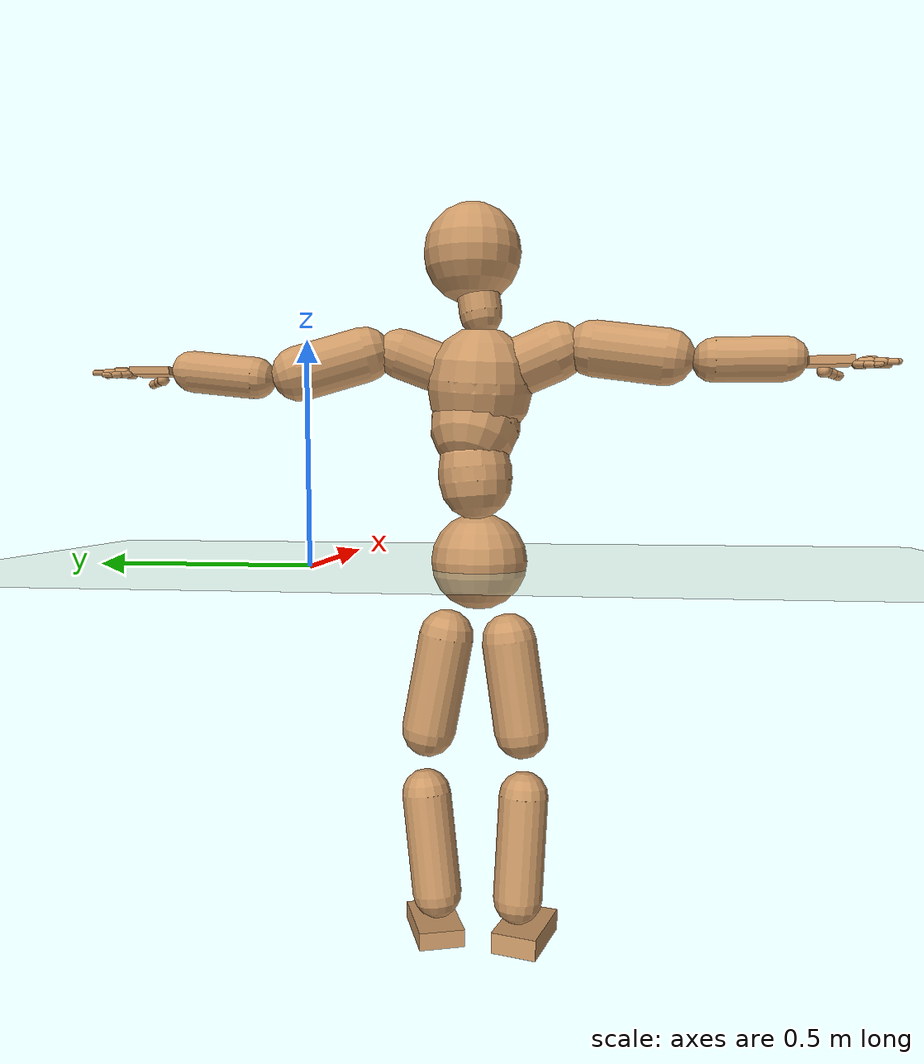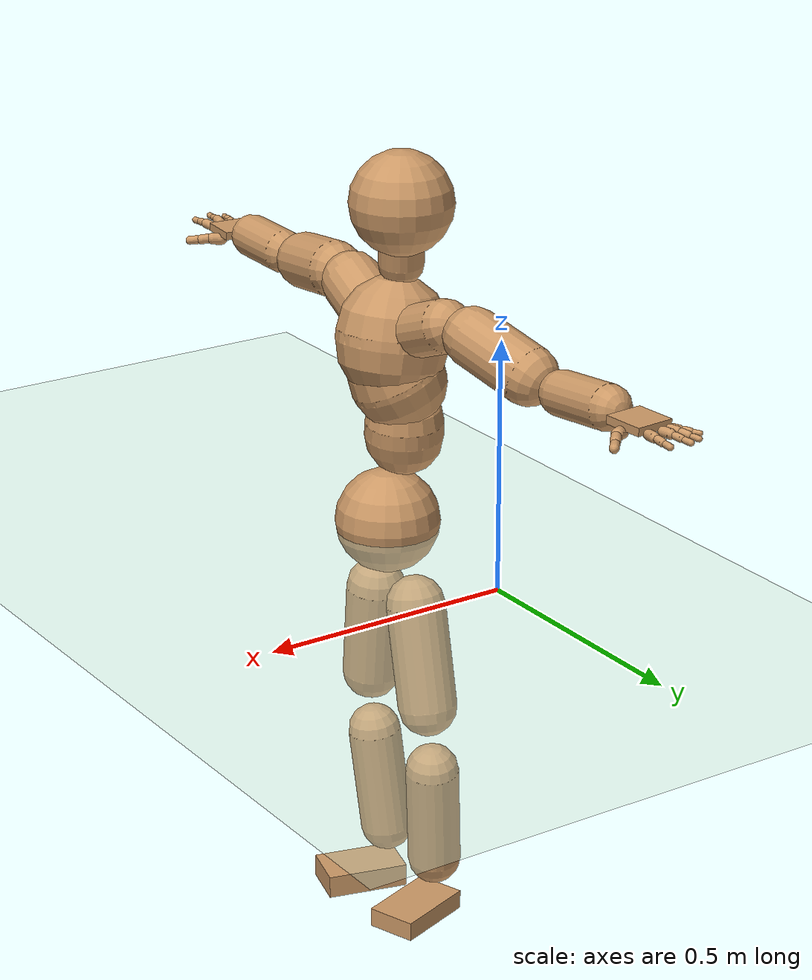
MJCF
<mujoco model="humanoid">
  <compiler coordinate="local" angle="radian"/>
  <default>
    <joint damping="0.0" armature="0.01" stiffness="0.0" limited="true"/>
    <geom conaffinity="1" condim="3" contype="7" margin="0.001" rgba="0.8 0.6 .4 1"/>
  </default>
  <asset>
    <texture type="skybox" builtin="gradient" rgb1=".4 .5 .6" rgb2="0 0 0" width="100" height="100"/>
    <texture builtin="flat" height="1278" mark="cross" markrgb="1 1 1" name="texgeom" random="0.01" rgb1="0.8 0.6 0.4" rgb2="0.8 0.6 0.4" type="cube" width="127"/>
    <texture builtin="checker" height="100" name="texplane" rgb1="0 0 0" rgb2="0.8 0.8 0.8" type="2d" width="100"/>
    <material name="MatPlane" reflectance="0.5" shininess="1" specular="1" texrepeat="60 60" texture="texplane"/>
    <material name="geom" texture="texgeom" texuniform="true"/>
  </asset>
  <worldbody>
    <light cutoff="100" diffuse="1 1 1" dir="-0 0 -1.3" directional="true" exponent="1" pos="0 0 1.3" specular=".1 .1 .1"/>
    <geom conaffinity="1" condim="3" name="floor" pos="0 0 0" rgba="0.8 0.9 0.8 1" size="100 100 .2" type="plane" material="MatPlane"/>
    <body name="Pelvis" pos="0.0013 -0.3829 0.0157">
      <freejoint name="Pelvis"/>
      <geom type="sphere" contype="1" conaffinity="1" density="500" size="0.1065" pos="0.0000 0.0000 0.0000" name="Pelvis"/>
      <body name="L_Hip" pos="-0.0199 0.057 -0.0952">
        <joint name="L_Hip_x" type="hinge" pos="0 0 0" axis="1 0 0" stiffness="800" damping="80" armature="0.02" range="-180.0000 180.0000"/>
        <joint name="L_Hip_y" type="hinge" pos="0 0 0" axis="0 1 0" stiffness="800" damping="80" armature="0.02" range="-180.0000 180.0000"/>
        <joint name="L_Hip_z" type="hinge" pos="0 0 0" axis="0 0 1" stiffness="800" damping="80" armature="0.02" range="-180.0000 180.0000"/>
        <geom type="capsule" contype="1" conaffinity="1" density="500" fromto="-0.0008 0.0131 -0.0709 -0.0032 0.0524 -0.2836" size="0.0603" name="L_Hip"/>
        <body name="L_Knee" pos="-0.004 0.0655 -0.3545">
          <joint name="L_Knee_x" type="hinge" pos="0 0 0" axis="1 0 0" stiffness="800" damping="80" armature="0.02" range="-180.0000 180.0000"/>
          <joint name="L_Knee_y" type="hinge" pos="0 0 0" axis="0 1 0" stiffness="800" damping="80" armature="0.02" range="-180.0000 180.0000"/>
          <joint name="L_Knee_z" type="hinge" pos="0 0 0" axis="0 0 1" stiffness="800" damping="80" armature="0.02" range="-180.0000 180.0000"/>
          <geom type="capsule" contype="1" conaffinity="1" density="500" fromto="-0.0080 -0.0090 -0.0740 -0.0320 -0.0361 -0.2962" size="0.0548" name="L_Knee"/>
          <body name="L_Ankle" pos="-0.04 -0.0451 -0.3702">
            <joint name="L_Ankle_x" type="hinge" pos="0 0 0" axis="1 0 0" stiffness="800" damping="80" armature="0.02" range="-180.0000 180.0000"/>
            <joint name="L_Ankle_y" type="hinge" pos="0 0 0" axis="0 1 0" stiffness="800" damping="80" armature="0.02" range="-180.0000 180.0000"/>
            <joint name="L_Ankle_z" type="hinge" pos="0 0 0" axis="0 0 1" stiffness="800" damping="80" armature="0.02" range="-180.0000 180.0000"/>
            <geom type="box" contype="1" conaffinity="1" density="500" pos="0.0626 0.0218 -0.0264" size="0.0857 0.0518 0.02" quat="0.9860 0.0000 0.0000 0.1667" name="L_Ankle"/>
            <body name="L_Toe" pos="0.1252 0.0436 -0.0529">
              <joint name="L_Toe_x" type="hinge" pos="0 0 0" axis="1 0 0" stiffness="500" damping="50" armature="0.02" range="-180.0000 180.0000"/>
              <joint name="L_Toe_y" type="hinge" pos="0 0 0" axis="0 1 0" stiffness="500" damping="50" armature="0.02" range="-180.0000 180.0000"/>
              <joint name="L_Toe_z" type="hinge" pos="0 0 0" axis="0 0 1" stiffness="500" damping="50" armature="0.02" range="-180.0000 180.0000"/>
              <geom type="box" contype="1" conaffinity="1" density="500" pos="0.0000 0.0000 0.0278" size="0.001 0.0025 0.0011" quat="0.9852 0.0000 0.0000 0.1712" name="L_Toe"/>
            </body>
          </body>
        </body>
      </body>
      <body name="R_Hip" pos="-0.0125 -0.0588 -0.1063">
        <joint name="R_Hip_x" type="hinge" pos="0 0 0" axis="1 0 0" stiffness="800" damping="80" armature="0.02" range="-180.0000 180.0000"/>
        <joint name="R_Hip_y" type="hinge" pos="0 0 0" axis="0 1 0" stiffness="800" damping="80" armature="0.02" range="-180.0000 180.0000"/>
        <joint name="R_Hip_z" type="hinge" pos="0 0 0" axis="0 0 1" stiffness="800" damping="80" armature="0.02" range="-180.0000 180.0000"/>
        <geom type="capsule" contype="1" conaffinity="1" density="500" fromto="-0.0024 -0.0099 -0.0677 -0.0097 -0.0396 -0.2707" size="0.0603" name="R_Hip"/>
        <body name="R_Knee" pos="-0.0121 -0.0495 -0.3384">
          <joint name="R_Knee_x" type="hinge" pos="0 0 0" axis="1 0 0" stiffness="800" damping="80" armature="0.02" range="-180.0000 180.0000"/>
          <joint name="R_Knee_y" type="hinge" pos="0 0 0" axis="0 1 0" stiffness="800" damping="80" armature="0.02" range="-180.0000 180.0000"/>
          <joint name="R_Knee_z" type="hinge" pos="0 0 0" axis="0 0 1" stiffness="800" damping="80" armature="0.02" range="-180.0000 180.0000"/>
          <geom type="capsule" contype="1" conaffinity="1" density="500" fromto="-0.0078 0.0033 -0.0763 -0.0314 0.0132 -0.3054" size="0.0548" name="R_Knee"/>
          <body name="R_Ankle" pos="-0.0392 0.0165 -0.3817">
            <joint name="R_Ankle_x" type="hinge" pos="0 0 0" axis="1 0 0" stiffness="800" damping="80" armature="0.02" range="-180.0000 180.0000"/>
            <joint name="R_Ankle_y" type="hinge" pos="0 0 0" axis="0 1 0" stiffness="800" damping="80" armature="0.02" range="-180.0000 180.0000"/>
            <joint name="R_Ankle_z" type="hinge" pos="0 0 0" axis="0 0 1" stiffness="800" damping="80" armature="0.02" range="-180.0000 180.0000"/>
            <geom type="box" contype="1" conaffinity="1" density="500" pos="0.0658 -0.0173 -0.0261" size="0.0857 0.0518 0.0241" quat="0.9918 0.0000 0.0000 -0.1282" name="R_Ankle"/>
            <body name="R_Toe" pos="0.1316 -0.0346 -0.0522">
              <joint name="R_Toe_x" type="hinge" pos="0 0 0" axis="1 0 0" stiffness="500" damping="50" armature="0.02" range="-180.0000 180.0000"/>
              <joint name="R_Toe_y" type="hinge" pos="0 0 0" axis="0 1 0" stiffness="500" damping="50" armature="0.02" range="-180.0000 180.0000"/>
              <joint name="R_Toe_z" type="hinge" pos="0 0 0" axis="0 0 1" stiffness="500" damping="50" armature="0.02" range="-180.0000 180.0000"/>
              <geom type="box" contype="1" conaffinity="1" density="500" pos="0.0000 0.0000 0.0234" size="0.001 0.0025 0.0011" quat="0.9929 0.0000 0.0000 -0.1193" name="R_Toe"/>
            </body>
          </body>
        </body>
      </body>
      <body name="Torso" pos="-0.0395 -0.001 0.1102">
        <joint name="Torso_x" type="hinge" pos="0 0 0" axis="1 0 0" stiffness="1000" damping="100" armature="0.02" range="-180.0000 180.0000"/>
        <joint name="Torso_y" type="hinge" pos="0 0 0" axis="0 1 0" stiffness="1000" damping="100" armature="0.02" range="-180.0000 180.0000"/>
        <joint name="Torso_z" type="hinge" pos="0 0 0" axis="0 0 1" stiffness="1000" damping="100" armature="0.02" range="-180.0000 180.0000"/>
        <geom type="capsule" contype="1" conaffinity="1" density="500" fromto="0.0036 0.0077 0.0944 0.0024 0.0051 0.0629" size="0.0793" name="Torso"/>
        <body name="Spine" pos="0.0059 0.0128 0.1573">
          <joint name="Spine_x" type="hinge" pos="0 0 0" axis="1 0 0" stiffness="1000" damping="100" armature="0.02" range="-180.0000 180.0000"/>
          <joint name="Spine_y" type="hinge" pos="0 0 0" axis="0 1 0" stiffness="1000" damping="100" armature="0.02" range="-180.0000 180.0000"/>
          <joint name="Spine_z" type="hinge" pos="0 0 0" axis="0 0 1" stiffness="1000" damping="100" armature="0.02" range="-180.0000 180.0000"/>
          <geom type="capsule" contype="1" conaffinity="1" density="500" fromto="0.0158 -0.0064 0.0355 0.0105 -0.0042 0.0236" size="0.0965" name="Spine"/>
          <body name="Chest" pos="0.0264 -0.0106 0.0591">
            <joint name="Chest_x" type="hinge" pos="0 0 0" axis="1 0 0" stiffness="1000" damping="100" armature="0.02" range="-180.0000 180.0000"/>
            <joint name="Chest_y" type="hinge" pos="0 0 0" axis="0 1 0" stiffness="1000" damping="100" armature="0.02" range="-180.0000 180.0000"/>
            <joint name="Chest_z" type="hinge" pos="0 0 0" axis="0 0 1" stiffness="1000" damping="100" armature="0.02" range="-180.0000 180.0000"/>
            <geom type="capsule" contype="1" conaffinity="1" density="500" fromto="-0.0093 -0.0038 0.0642 -0.0062 -0.0025 0.0428" size="0.1133" name="Chest"/>
            <body name="Neck" pos="-0.0331 -0.012 0.1674">
              <joint name="Neck_x" type="hinge" pos="0 0 0" axis="1 0 0" stiffness="500" damping="50" armature="0.02" range="-180.0000 180.0000"/>
              <joint name="Neck_y" type="hinge" pos="0 0 0" axis="0 1 0" stiffness="500" damping="50" armature="0.02" range="-180.0000 180.0000"/>
              <joint name="Neck_z" type="hinge" pos="0 0 0" axis="0 0 1" stiffness="500" damping="50" armature="0.02" range="-180.0000 180.0000"/>
              <geom type="capsule" contype="1" conaffinity="1" density="500" fromto="0.0028 0.0049 0.0319 0.0114 0.0197 0.1274" size="0.0453" name="Neck"/>
              <body name="Head" pos="0.0142 0.0247 0.1593">
                <joint name="Head_x" type="hinge" pos="0 0 0" axis="1 0 0" stiffness="500" damping="50" armature="0.02" range="-180.0000 180.0000"/>
                <joint name="Head_y" type="hinge" pos="0 0 0" axis="0 1 0" stiffness="500" damping="50" armature="0.02" range="-180.0000 180.0000"/>
                <joint name="Head_z" type="hinge" pos="0 0 0" axis="0 0 1" stiffness="500" damping="50" armature="0.02" range="-180.0000 180.0000"/>
                <geom type="sphere" contype="1" conaffinity="1" density="500" size="0.1036" pos="0.0000 0.0000 0.0000" name="Head"/>
              </body>
            </body>
            <body name="L_Thorax" pos="-0.0056 0.0455 0.0764">
              <joint name="L_Thorax_x" type="hinge" pos="0 0 0" axis="1 0 0" stiffness="500" damping="50" armature="0.02" range="-180.0000 180.0000"/>
              <joint name="L_Thorax_y" type="hinge" pos="0 0 0" axis="0 1 0" stiffness="500" damping="50" armature="0.02" range="-180.0000 180.0000"/>
              <joint name="L_Thorax_z" type="hinge" pos="0 0 0" axis="0 0 1" stiffness="500" damping="50" armature="0.02" range="-180.0000 180.0000"/>
              <geom type="capsule" contype="1" conaffinity="1" density="500" fromto="-0.0021 0.0307 0.0116 -0.0084 0.1227 0.0464" size="0.0529" name="L_Thorax"/>
              <body name="L_Shoulder" pos="-0.0105 0.1534 0.058">
                <joint name="L_Shoulder_x" type="hinge" pos="0 0 0" axis="1 0 0" stiffness="500" damping="50" armature="0.02" range="-180.0000 180.0000"/>
                <joint name="L_Shoulder_y" type="hinge" pos="0 0 0" axis="0 1 0" stiffness="500" damping="50" armature="0.02" range="-180.0000 180.0000"/>
                <joint name="L_Shoulder_z" type="hinge" pos="0 0 0" axis="0 0 1" stiffness="500" damping="50" armature="0.02" range="-180.0000 180.0000"/>
                <geom type="capsule" contype="1" conaffinity="1" density="500" fromto="-0.0098 0.0461 -0.0139 -0.0394 0.1845 -0.0556" size="0.0587" name="L_Shoulder"/>
                <body name="L_Elbow" pos="-0.0492 0.2306 -0.0695">
                  <joint name="L_Elbow_x" type="hinge" pos="0 0 0" axis="1 0 0" stiffness="500" damping="50" armature="0.02" range="-720.0000 720.0000"/>
                  <joint name="L_Elbow_y" type="hinge" pos="0 0 0" axis="0 1 0" stiffness="500" damping="50" armature="0.02" range="-720.0000 720.0000"/>
                  <joint name="L_Elbow_z" type="hinge" pos="0 0 0" axis="0 0 1" stiffness="500" damping="50" armature="0.02" range="-720.0000 720.0000"/>
                  <geom type="capsule" contype="1" conaffinity="1" density="500" fromto="0.0006 0.0470 0.0052 0.0023 0.1881 0.0208" size="0.0443" name="L_Elbow"/>
                  <body name="L_Wrist" pos="0.0029 0.2352 0.026">
                    <joint name="L_Wrist_x" type="hinge" pos="0 0 0" axis="1 0 0" stiffness="300" damping="30" armature="0.02" range="-180.0000 180.0000"/>
                    <joint name="L_Wrist_y" type="hinge" pos="0 0 0" axis="0 1 0" stiffness="300" damping="30" armature="0.02" range="-180.0000 180.0000"/>
                    <joint name="L_Wrist_z" type="hinge" pos="0 0 0" axis="0 0 1" stiffness="300" damping="30" armature="0.02" range="-180.0000 180.0000"/>
                    <geom type="box" contype="1" conaffinity="1" density="500" pos="-0.0029 0.0389 -0.0050" size="0.0426 0.0395 0.0082" quat="0.7326 0.0000 0.0000 -0.6807" name="L_Wrist"/>
                    <body name="L_Index1" pos="0.0214 0.0923 -0.0068">
                      <joint name="L_Index1_x" type="hinge" pos="0 0 0" axis="1 0 0" stiffness="100" damping="10" armature="0.02" range="-180.0000 180.0000"/>
                      <joint name="L_Index1_y" type="hinge" pos="0 0 0" axis="0 1 0" stiffness="100" damping="10" armature="0.02" range="-180.0000 180.0000"/>
                      <joint name="L_Index1_z" type="hinge" pos="0 0 0" axis="0 0 1" stiffness="100" damping="10" armature="0.02" range="-180.0000 180.0000"/>
                      <geom type="capsule" contype="1" conaffinity="1" density="500" fromto="0.0007 0.0062 0.0004 0.0029 0.0249 0.0014" size="0.0099" name="L_Index1"/>
                      <body name="L_Index2" pos="0.0037 0.0312 0.0018">
                        <joint name="L_Index2_x" type="hinge" pos="0 0 0" axis="1 0 0" stiffness="100" damping="10" armature="0.02" range="-180.0000 180.0000"/>
                        <joint name="L_Index2_y" type="hinge" pos="0 0 0" axis="0 1 0" stiffness="100" damping="10" armature="0.02" range="-180.0000 180.0000"/>
                        <joint name="L_Index2_z" type="hinge" pos="0 0 0" axis="0 0 1" stiffness="100" damping="10" armature="0.02" range="-180.0000 180.0000"/>
                        <geom type="capsule" contype="1" conaffinity="1" density="500" fromto="-0.0001 0.0044 -0.0005 -0.0003 0.0176 -0.0021" size="0.0079" name="L_Index2"/>
                        <body name="L_Index3" pos="-0.0003 0.0219 -0.0026">
                          <joint name="L_Index3_x" type="hinge" pos="0 0 0" axis="1 0 0" stiffness="100" damping="10" armature="0.02" range="-180.0000 180.0000"/>
                          <joint name="L_Index3_y" type="hinge" pos="0 0 0" axis="0 1 0" stiffness="100" damping="10" armature="0.02" range="-180.0000 180.0000"/>
                          <joint name="L_Index3_z" type="hinge" pos="0 0 0" axis="0 0 1" stiffness="100" damping="10" armature="0.02" range="-180.0000 180.0000"/>
                          <geom type="capsule" contype="1" conaffinity="1" density="500" fromto="0.0003 0.0048 -0.0001 0.0013 0.0192 -0.0005" size="0.0066" name="L_Index3"/>
                        </body>
                      </body>
                    </body>
                    <body name="L_Middle1" pos="-0.0035 0.0996 -0.004">
                      <joint name="L_Middle1_x" type="hinge" pos="0 0 0" axis="1 0 0" stiffness="100" damping="10" armature="0.02" range="-180.0000 180.0000"/>
                      <joint name="L_Middle1_y" type="hinge" pos="0 0 0" axis="0 1 0" stiffness="100" damping="10" armature="0.02" range="-180.0000 180.0000"/>
                      <joint name="L_Middle1_z" type="hinge" pos="0 0 0" axis="0 0 1" stiffness="100" damping="10" armature="0.02" range="-180.0000 180.0000"/>
                      <geom type="capsule" contype="1" conaffinity="1" density="500" fromto="-0.0009 0.0060 0.0001 -0.0034 0.0238 0.0005" size="0.0099" name="L_Middle1"/>
                      <body name="L_Middle2" pos="-0.0043 0.0298 0.0006">
                        <joint name="L_Middle2_x" type="hinge" pos="0 0 0" axis="1 0 0" stiffness="100" damping="10" armature="0.02" range="-180.0000 180.0000"/>
                        <joint name="L_Middle2_y" type="hinge" pos="0 0 0" axis="0 1 0" stiffness="100" damping="10" armature="0.02" range="-180.0000 180.0000"/>
                        <joint name="L_Middle2_z" type="hinge" pos="0 0 0" axis="0 0 1" stiffness="100" damping="10" armature="0.02" range="-180.0000 180.0000"/>
                        <geom type="capsule" contype="1" conaffinity="1" density="500" fromto="-0.0008 0.0045 -0.0005 -0.0034 0.0181 -0.0019" size="0.0072" name="L_Middle2"/>
                        <body name="L_Middle3" pos="-0.0042 0.0226 -0.0024">
                          <joint name="L_Middle3_x" type="hinge" pos="0 0 0" axis="1 0 0" stiffness="100" damping="10" armature="0.02" range="-180.0000 180.0000"/>
                          <joint name="L_Middle3_y" type="hinge" pos="0 0 0" axis="0 1 0" stiffness="100" damping="10" armature="0.02" range="-180.0000 180.0000"/>
                          <joint name="L_Middle3_z" type="hinge" pos="0 0 0" axis="0 0 1" stiffness="100" damping="10" armature="0.02" range="-180.0000 180.0000"/>
                          <geom type="capsule" contype="1" conaffinity="1" density="500" fromto="-0.0004 0.0049 -0.0001 -0.0018 0.0197 -0.0003" size="0.0062" name="L_Middle3"/>
                        </body>
                      </body>
                    </body>
                    <body name="L_Pinky1" pos="-0.0458 0.0754 -0.0133">
                      <joint name="L_Pinky1_x" type="hinge" pos="0 0 0" axis="1 0 0" stiffness="100" damping="10" armature="0.02" range="-180.0000 180.0000"/>
                      <joint name="L_Pinky1_y" type="hinge" pos="0 0 0" axis="0 1 0" stiffness="100" damping="10" armature="0.02" range="-180.0000 180.0000"/>
                      <joint name="L_Pinky1_z" type="hinge" pos="0 0 0" axis="0 0 1" stiffness="100" damping="10" armature="0.02" range="-180.0000 180.0000"/>
                      <geom type="capsule" contype="1" conaffinity="1" density="500" fromto="-0.0024 0.0032 -0.0003 -0.0095 0.0129 -0.0013" size="0.007" name="L_Pinky1"/>
                      <body name="L_Pinky2" pos="-0.0118 0.0161 -0.0016">
                        <joint name="L_Pinky2_x" type="hinge" pos="0 0 0" axis="1 0 0" stiffness="100" damping="10" armature="0.02" range="-180.0000 180.0000"/>
                        <joint name="L_Pinky2_y" type="hinge" pos="0 0 0" axis="0 1 0" stiffness="100" damping="10" armature="0.02" range="-180.0000 180.0000"/>
                        <joint name="L_Pinky2_z" type="hinge" pos="0 0 0" axis="0 0 1" stiffness="100" damping="10" armature="0.02" range="-180.0000 180.0000"/>
                        <geom type="capsule" contype="1" conaffinity="1" density="500" fromto="-0.0021 0.0032 -0.0004 -0.0086 0.0127 -0.0016" size="0.0066" name="L_Pinky2"/>
                        <body name="L_Pinky3" pos="-0.0107 0.0159 -0.002">
                          <joint name="L_Pinky3_x" type="hinge" pos="0 0 0" axis="1 0 0" stiffness="100" damping="10" armature="0.02" range="-180.0000 180.0000"/>
                          <joint name="L_Pinky3_y" type="hinge" pos="0 0 0" axis="0 1 0" stiffness="100" damping="10" armature="0.02" range="-180.0000 180.0000"/>
                          <joint name="L_Pinky3_z" type="hinge" pos="0 0 0" axis="0 0 1" stiffness="100" damping="10" armature="0.02" range="-180.0000 180.0000"/>
                          <geom type="capsule" contype="1" conaffinity="1" density="500" fromto="-0.0017 0.0036 0.0000 -0.0070 0.0143 0.0000" size="0.0049" name="L_Pinky3"/>
                        </body>
                      </body>
                    </body>
                    <body name="L_Ring1" pos="-0.0284 0.0881 -0.0072">
                      <joint name="L_Ring1_x" type="hinge" pos="0 0 0" axis="1 0 0" stiffness="100" damping="10" armature="0.02" range="-180.0000 180.0000"/>
                      <joint name="L_Ring1_y" type="hinge" pos="0 0 0" axis="0 1 0" stiffness="100" damping="10" armature="0.02" range="-180.0000 180.0000"/>
                      <joint name="L_Ring1_z" type="hinge" pos="0 0 0" axis="0 0 1" stiffness="100" damping="10" armature="0.02" range="-180.0000 180.0000"/>
                      <geom type="capsule" contype="1" conaffinity="1" density="500" fromto="-0.0010 0.0055 0.0001 -0.0039 0.0221 0.0005" size="0.0084" name="L_Ring1"/>
                      <body name="L_Ring2" pos="-0.0048 0.0277 0.0006">
                        <joint name="L_Ring2_x" type="hinge" pos="0 0 0" axis="1 0 0" stiffness="100" damping="10" armature="0.02" range="-180.0000 180.0000"/>
                        <joint name="L_Ring2_y" type="hinge" pos="0 0 0" axis="0 1 0" stiffness="100" damping="10" armature="0.02" range="-180.0000 180.0000"/>
                        <joint name="L_Ring2_z" type="hinge" pos="0 0 0" axis="0 0 1" stiffness="100" damping="10" armature="0.02" range="-180.0000 180.0000"/>
                        <geom type="capsule" contype="1" conaffinity="1" density="500" fromto="-0.0013 0.0045 -0.0005 -0.0051 0.0180 -0.0020" size="0.0077" name="L_Ring2"/>
                        <body name="L_Ring3" pos="-0.0064 0.0225 -0.0025">
                          <joint name="L_Ring3_x" type="hinge" pos="0 0 0" axis="1 0 0" stiffness="100" damping="10" armature="0.02" range="-180.0000 180.0000"/>
                          <joint name="L_Ring3_y" type="hinge" pos="0 0 0" axis="0 1 0" stiffness="100" damping="10" armature="0.02" range="-180.0000 180.0000"/>
                          <joint name="L_Ring3_z" type="hinge" pos="0 0 0" axis="0 0 1" stiffness="100" damping="10" armature="0.02" range="-180.0000 180.0000"/>
                          <geom type="capsule" contype="1" conaffinity="1" density="500" fromto="-0.0009 0.0049 -0.0001 -0.0035 0.0196 -0.0004" size="0.0058" name="L_Ring3"/>
                        </body>
                      </body>
                    </body>
                    <body name="L_Thumb1" pos="0.0278 0.0336 -0.0191">
                      <joint name="L_Thumb1_x" type="hinge" pos="0 0 0" axis="1 0 0" stiffness="100" damping="10" armature="0.02" range="-180.0000 180.0000"/>
                      <joint name="L_Thumb1_y" type="hinge" pos="0 0 0" axis="0 1 0" stiffness="100" damping="10" armature="0.02" range="-180.0000 180.0000"/>
                      <joint name="L_Thumb1_z" type="hinge" pos="0 0 0" axis="0 0 1" stiffness="100" damping="10" armature="0.02" range="-180.0000 180.0000"/>
                      <geom type="capsule" contype="1" conaffinity="1" density="500" fromto="0.0053 0.0030 0.0005 0.0213 0.0119 0.0018" size="0.0126" name="L_Thumb1"/>
                      <body name="L_Thumb2" pos="0.0266 0.0149 0.0023">
                        <joint name="L_Thumb2_x" type="hinge" pos="0 0 0" axis="1 0 0" stiffness="100" damping="10" armature="0.02" range="-180.0000 180.0000"/>
                        <joint name="L_Thumb2_y" type="hinge" pos="0 0 0" axis="0 1 0" stiffness="100" damping="10" armature="0.02" range="-180.0000 180.0000"/>
                        <joint name="L_Thumb2_z" type="hinge" pos="0 0 0" axis="0 0 1" stiffness="100" damping="10" armature="0.02" range="-180.0000 180.0000"/>
                        <geom type="capsule" contype="1" conaffinity="1" density="500" fromto="0.0033 0.0037 -0.0010 0.0131 0.0149 -0.0038" size="0.0101" name="L_Thumb2"/>
                        <body name="L_Thumb3" pos="0.0164 0.0187 -0.0048">
                          <joint name="L_Thumb3_x" type="hinge" pos="0 0 0" axis="1 0 0" stiffness="100" damping="10" armature="0.02" range="-180.0000 180.0000"/>
                          <joint name="L_Thumb3_y" type="hinge" pos="0 0 0" axis="0 1 0" stiffness="100" damping="10" armature="0.02" range="-180.0000 180.0000"/>
                          <joint name="L_Thumb3_z" type="hinge" pos="0 0 0" axis="0 0 1" stiffness="100" damping="10" armature="0.02" range="-180.0000 180.0000"/>
                          <geom type="capsule" contype="1" conaffinity="1" density="500" fromto="0.0037 0.0041 -0.0006 0.0147 0.0165 -0.0022" size="0.0091" name="L_Thumb3"/>
                        </body>
                      </body>
                    </body>
                  </body>
                </body>
              </body>
            </body>
            <body name="R_Thorax" pos="-0.0079 -0.0524 0.0771">
              <joint name="R_Thorax_x" type="hinge" pos="0 0 0" axis="1 0 0" stiffness="500" damping="50" armature="0.02" range="-180.0000 180.0000"/>
              <joint name="R_Thorax_y" type="hinge" pos="0 0 0" axis="0 1 0" stiffness="500" damping="50" armature="0.02" range="-180.0000 180.0000"/>
              <joint name="R_Thorax_z" type="hinge" pos="0 0 0" axis="0 0 1" stiffness="500" damping="50" armature="0.02" range="-180.0000 180.0000"/>
              <geom type="capsule" contype="1" conaffinity="1" density="500" fromto="-0.0026 -0.0281 0.0113 -0.0105 -0.1125 0.0450" size="0.0623" name="R_Thorax"/>
              <body name="R_Shoulder" pos="-0.0131 -0.1406 0.0563">
                <joint name="R_Shoulder_x" type="hinge" pos="0 0 0" axis="1 0 0" stiffness="500" damping="50" armature="0.02" range="-180.0000 180.0000"/>
                <joint name="R_Shoulder_y" type="hinge" pos="0 0 0" axis="0 1 0" stiffness="500" damping="50" armature="0.02" range="-180.0000 180.0000"/>
                <joint name="R_Shoulder_z" type="hinge" pos="0 0 0" axis="0 0 1" stiffness="500" damping="50" armature="0.02" range="-180.0000 180.0000"/>
                <geom type="capsule" contype="1" conaffinity="1" density="500" fromto="-0.0062 -0.0497 -0.0075 -0.0250 -0.1986 -0.0299" size="0.0581" name="R_Shoulder"/>
                <body name="R_Elbow" pos="-0.0312 -0.2483 -0.0374">
                  <joint name="R_Elbow_x" type="hinge" pos="0 0 0" axis="1 0 0" stiffness="500" damping="50" armature="0.02" range="-720.0000 720.0000"/>
                  <joint name="R_Elbow_y" type="hinge" pos="0 0 0" axis="0 1 0" stiffness="500" damping="50" armature="0.02" range="-720.0000 720.0000"/>
                  <joint name="R_Elbow_z" type="hinge" pos="0 0 0" axis="0 0 1" stiffness="500" damping="50" armature="0.02" range="-720.0000 720.0000"/>
                  <geom type="capsule" contype="1" conaffinity="1" density="500" fromto="-0.0018 -0.0458 -0.0003 -0.0074 -0.1833 -0.0010" size="0.0453" name="R_Elbow"/>
                  <body name="R_Wrist" pos="-0.0092 -0.2291 -0.0013">
                    <joint name="R_Wrist_x" type="hinge" pos="0 0 0" axis="1 0 0" stiffness="300" damping="30" armature="0.02" range="-180.0000 180.0000"/>
                    <joint name="R_Wrist_y" type="hinge" pos="0 0 0" axis="0 1 0" stiffness="300" damping="30" armature="0.02" range="-180.0000 180.0000"/>
                    <joint name="R_Wrist_z" type="hinge" pos="0 0 0" axis="0 0 1" stiffness="300" damping="30" armature="0.02" range="-180.0000 180.0000"/>
                    <geom type="box" contype="1" conaffinity="1" density="500" pos="-0.0033 -0.0387 -0.0069" size="0.0426 0.0402 0.0084" quat="0.7368 0.0000 0.0000 0.6762" name="R_Wrist"/>
                    <body name="R_Index1" pos="0.0205 -0.0919 -0.0106">
                      <joint name="R_Index1_x" type="hinge" pos="0 0 0" axis="1 0 0" stiffness="100" damping="10" armature="0.02" range="-180.0000 180.0000"/>
                      <joint name="R_Index1_y" type="hinge" pos="0 0 0" axis="0 1 0" stiffness="100" damping="10" armature="0.02" range="-180.0000 180.0000"/>
                      <joint name="R_Index1_z" type="hinge" pos="0 0 0" axis="0 0 1" stiffness="100" damping="10" armature="0.02" range="-180.0000 180.0000"/>
                      <geom type="capsule" contype="1" conaffinity="1" density="500" fromto="0.0007 -0.0062 0.0004 0.0029 -0.0249 0.0014" size="0.0099" name="R_Index1"/>
                      <body name="R_Index2" pos="0.0037 -0.0312 0.0018">
                        <joint name="R_Index2_x" type="hinge" pos="0 0 0" axis="1 0 0" stiffness="100" damping="10" armature="0.02" range="-180.0000 180.0000"/>
                        <joint name="R_Index2_y" type="hinge" pos="0 0 0" axis="0 1 0" stiffness="100" damping="10" armature="0.02" range="-180.0000 180.0000"/>
                        <joint name="R_Index2_z" type="hinge" pos="0 0 0" axis="0 0 1" stiffness="100" damping="10" armature="0.02" range="-180.0000 180.0000"/>
                        <geom type="capsule" contype="1" conaffinity="1" density="500" fromto="-0.0001 -0.0044 -0.0005 -0.0003 -0.0176 -0.0021" size="0.0079" name="R_Index2"/>
                        <body name="R_Index3" pos="-0.0003 -0.0219 -0.0026">
                          <joint name="R_Index3_x" type="hinge" pos="0 0 0" axis="1 0 0" stiffness="100" damping="10" armature="0.02" range="-180.0000 180.0000"/>
                          <joint name="R_Index3_y" type="hinge" pos="0 0 0" axis="0 1 0" stiffness="100" damping="10" armature="0.02" range="-180.0000 180.0000"/>
                          <joint name="R_Index3_z" type="hinge" pos="0 0 0" axis="0 0 1" stiffness="100" damping="10" armature="0.02" range="-180.0000 180.0000"/>
                          <geom type="capsule" contype="1" conaffinity="1" density="500" fromto="0.0003 -0.0040 -0.0001 0.0013 -0.0160 -0.0005" size="0.0069" name="R_Index3"/>
                        </body>
                      </body>
                    </body>
                    <body name="R_Middle1" pos="-0.0045 -0.0992 -0.0078">
                      <joint name="R_Middle1_x" type="hinge" pos="0 0 0" axis="1 0 0" stiffness="100" damping="10" armature="0.02" range="-180.0000 180.0000"/>
                      <joint name="R_Middle1_y" type="hinge" pos="0 0 0" axis="0 1 0" stiffness="100" damping="10" armature="0.02" range="-180.0000 180.0000"/>
                      <joint name="R_Middle1_z" type="hinge" pos="0 0 0" axis="0 0 1" stiffness="100" damping="10" armature="0.02" range="-180.0000 180.0000"/>
                      <geom type="capsule" contype="1" conaffinity="1" density="500" fromto="-0.0009 -0.0060 0.0001 -0.0034 -0.0238 0.0005" size="0.0099" name="R_Middle1"/>
                      <body name="R_Middle2" pos="-0.0043 -0.0298 0.0006">
                        <joint name="R_Middle2_x" type="hinge" pos="0 0 0" axis="1 0 0" stiffness="100" damping="10" armature="0.02" range="-180.0000 180.0000"/>
                        <joint name="R_Middle2_y" type="hinge" pos="0 0 0" axis="0 1 0" stiffness="100" damping="10" armature="0.02" range="-180.0000 180.0000"/>
                        <joint name="R_Middle2_z" type="hinge" pos="0 0 0" axis="0 0 1" stiffness="100" damping="10" armature="0.02" range="-180.0000 180.0000"/>
                        <geom type="capsule" contype="1" conaffinity="1" density="500" fromto="-0.0008 -0.0045 -0.0005 -0.0034 -0.0181 -0.0019" size="0.0072" name="R_Middle2"/>
                        <body name="R_Middle3" pos="-0.0042 -0.0226 -0.0024">
                          <joint name="R_Middle3_x" type="hinge" pos="0 0 0" axis="1 0 0" stiffness="100" damping="10" armature="0.02" range="-180.0000 180.0000"/>
                          <joint name="R_Middle3_y" type="hinge" pos="0 0 0" axis="0 1 0" stiffness="100" damping="10" armature="0.02" range="-180.0000 180.0000"/>
                          <joint name="R_Middle3_z" type="hinge" pos="0 0 0" axis="0 0 1" stiffness="100" damping="10" armature="0.02" range="-180.0000 180.0000"/>
                          <geom type="capsule" contype="1" conaffinity="1" density="500" fromto="-0.0004 -0.0041 -0.0001 -0.0018 -0.0165 -0.0003" size="0.0065" name="R_Middle3"/>
                        </body>
                      </body>
                    </body>
                    <body name="R_Pinky1" pos="-0.0467 -0.0749 -0.0171">
                      <joint name="R_Pinky1_x" type="hinge" pos="0 0 0" axis="1 0 0" stiffness="100" damping="10" armature="0.02" range="-180.0000 180.0000"/>
                      <joint name="R_Pinky1_y" type="hinge" pos="0 0 0" axis="0 1 0" stiffness="100" damping="10" armature="0.02" range="-180.0000 180.0000"/>
                      <joint name="R_Pinky1_z" type="hinge" pos="0 0 0" axis="0 0 1" stiffness="100" damping="10" armature="0.02" range="-180.0000 180.0000"/>
                      <geom type="capsule" contype="1" conaffinity="1" density="500" fromto="-0.0024 -0.0032 -0.0003 -0.0095 -0.0129 -0.0013" size="0.007" name="R_Pinky1"/>
                      <body name="R_Pinky2" pos="-0.0118 -0.0161 -0.0016">
                        <joint name="R_Pinky2_x" type="hinge" pos="0 0 0" axis="1 0 0" stiffness="100" damping="10" armature="0.02" range="-180.0000 180.0000"/>
                        <joint name="R_Pinky2_y" type="hinge" pos="0 0 0" axis="0 1 0" stiffness="100" damping="10" armature="0.02" range="-180.0000 180.0000"/>
                        <joint name="R_Pinky2_z" type="hinge" pos="0 0 0" axis="0 0 1" stiffness="100" damping="10" armature="0.02" range="-180.0000 180.0000"/>
                        <geom type="capsule" contype="1" conaffinity="1" density="500" fromto="-0.0021 -0.0032 -0.0004 -0.0086 -0.0127 -0.0016" size="0.0066" name="R_Pinky2"/>
                        <body name="R_Pinky3" pos="-0.0107 -0.0159 -0.002">
                          <joint name="R_Pinky3_x" type="hinge" pos="0 0 0" axis="1 0 0" stiffness="100" damping="10" armature="0.02" range="-180.0000 180.0000"/>
                          <joint name="R_Pinky3_y" type="hinge" pos="0 0 0" axis="0 1 0" stiffness="100" damping="10" armature="0.02" range="-180.0000 180.0000"/>
                          <joint name="R_Pinky3_z" type="hinge" pos="0 0 0" axis="0 0 1" stiffness="100" damping="10" armature="0.02" range="-180.0000 180.0000"/>
                          <geom type="capsule" contype="1" conaffinity="1" density="500" fromto="-0.0017 -0.0028 0.0000 -0.0070 -0.0111 0.0000" size="0.0051" name="R_Pinky3"/>
                        </body>
                      </body>
                    </body>
                    <body name="R_Ring1" pos="-0.0294 -0.0876 -0.011">
                      <joint name="R_Ring1_x" type="hinge" pos="0 0 0" axis="1 0 0" stiffness="100" damping="10" armature="0.02" range="-180.0000 180.0000"/>
                      <joint name="R_Ring1_y" type="hinge" pos="0 0 0" axis="0 1 0" stiffness="100" damping="10" armature="0.02" range="-180.0000 180.0000"/>
                      <joint name="R_Ring1_z" type="hinge" pos="0 0 0" axis="0 0 1" stiffness="100" damping="10" armature="0.02" range="-180.0000 180.0000"/>
                      <geom type="capsule" contype="1" conaffinity="1" density="500" fromto="-0.0010 -0.0055 0.0001 -0.0039 -0.0221 0.0005" size="0.0084" name="R_Ring1"/>
                      <body name="R_Ring2" pos="-0.0048 -0.0277 0.0006">
                        <joint name="R_Ring2_x" type="hinge" pos="0 0 0" axis="1 0 0" stiffness="100" damping="10" armature="0.02" range="-180.0000 180.0000"/>
                        <joint name="R_Ring2_y" type="hinge" pos="0 0 0" axis="0 1 0" stiffness="100" damping="10" armature="0.02" range="-180.0000 180.0000"/>
                        <joint name="R_Ring2_z" type="hinge" pos="0 0 0" axis="0 0 1" stiffness="100" damping="10" armature="0.02" range="-180.0000 180.0000"/>
                        <geom type="capsule" contype="1" conaffinity="1" density="500" fromto="-0.0013 -0.0045 -0.0005 -0.0051 -0.0180 -0.0020" size="0.0077" name="R_Ring2"/>
                        <body name="R_Ring3" pos="-0.0064 -0.0225 -0.0025">
                          <joint name="R_Ring3_x" type="hinge" pos="0 0 0" axis="1 0 0" stiffness="100" damping="10" armature="0.02" range="-180.0000 180.0000"/>
                          <joint name="R_Ring3_y" type="hinge" pos="0 0 0" axis="0 1 0" stiffness="100" damping="10" armature="0.02" range="-180.0000 180.0000"/>
                          <joint name="R_Ring3_z" type="hinge" pos="0 0 0" axis="0 0 1" stiffness="100" damping="10" armature="0.02" range="-180.0000 180.0000"/>
                          <geom type="capsule" contype="1" conaffinity="1" density="500" fromto="-0.0009 -0.0041 -0.0001 -0.0035 -0.0164 -0.0004" size="0.0061" name="R_Ring3"/>
                        </body>
                      </body>
                    </body>
                    <body name="R_Thumb1" pos="0.0268 -0.0332 -0.0229">
                      <joint name="R_Thumb1_x" type="hinge" pos="0 0 0" axis="1 0 0" stiffness="100" damping="10" armature="0.02" range="-180.0000 180.0000"/>
                      <joint name="R_Thumb1_y" type="hinge" pos="0 0 0" axis="0 1 0" stiffness="100" damping="10" armature="0.02" range="-180.0000 180.0000"/>
                      <joint name="R_Thumb1_z" type="hinge" pos="0 0 0" axis="0 0 1" stiffness="100" damping="10" armature="0.02" range="-180.0000 180.0000"/>
                      <geom type="capsule" contype="1" conaffinity="1" density="500" fromto="0.0053 -0.0030 0.0005 0.0213 -0.0119 0.0018" size="0.0126" name="R_Thumb1"/>
                      <body name="R_Thumb2" pos="0.0266 -0.0149 0.0023">
                        <joint name="R_Thumb2_x" type="hinge" pos="0 0 0" axis="1 0 0" stiffness="100" damping="10" armature="0.02" range="-180.0000 180.0000"/>
                        <joint name="R_Thumb2_y" type="hinge" pos="0 0 0" axis="0 1 0" stiffness="100" damping="10" armature="0.02" range="-180.0000 180.0000"/>
                        <joint name="R_Thumb2_z" type="hinge" pos="0 0 0" axis="0 0 1" stiffness="100" damping="10" armature="0.02" range="-180.0000 180.0000"/>
                        <geom type="capsule" contype="1" conaffinity="1" density="500" fromto="0.0033 -0.0037 -0.0010 0.0131 -0.0149 -0.0038" size="0.0101" name="R_Thumb2"/>
                        <body name="R_Thumb3" pos="0.0164 -0.0187 -0.0048">
                          <joint name="R_Thumb3_x" type="hinge" pos="0 0 0" axis="1 0 0" stiffness="100" damping="10" armature="0.02" range="-180.0000 180.0000"/>
                          <joint name="R_Thumb3_y" type="hinge" pos="0 0 0" axis="0 1 0" stiffness="100" damping="10" armature="0.02" range="-180.0000 180.0000"/>
                          <joint name="R_Thumb3_z" type="hinge" pos="0 0 0" axis="0 0 1" stiffness="100" damping="10" armature="0.02" range="-180.0000 180.0000"/>
                          <geom type="capsule" contype="1" conaffinity="1" density="500" fromto="0.0037 -0.0033 -0.0006 0.0147 -0.0133 -0.0022" size="0.0093" name="R_Thumb3"/>
                        </body>
                      </body>
                    </body>
                  </body>
                </body>
              </body>
            </body>
          </body>
        </body>
      </body>
    </body>
  </worldbody>
  <actuator>
    <motor name="L_Hip_x" joint="L_Hip_x" gear="500"/>
    <motor name="L_Hip_y" joint="L_Hip_y" gear="500"/>
    <motor name="L_Hip_z" joint="L_Hip_z" gear="500"/>
    <motor name="L_Knee_x" joint="L_Knee_x" gear="500"/>
    <motor name="L_Knee_y" joint="L_Knee_y" gear="500"/>
    <motor name="L_Knee_z" joint="L_Knee_z" gear="500"/>
    <motor name="L_Ankle_x" joint="L_Ankle_x" gear="500"/>
    <motor name="L_Ankle_y" joint="L_Ankle_y" gear="500"/>
    <motor name="L_Ankle_z" joint="L_Ankle_z" gear="500"/>
    <motor name="L_Toe_x" joint="L_Toe_x" gear="500"/>
    <motor name="L_Toe_y" joint="L_Toe_y" gear="500"/>
    <motor name="L_Toe_z" joint="L_Toe_z" gear="500"/>
    <motor name="R_Hip_x" joint="R_Hip_x" gear="500"/>
    <motor name="R_Hip_y" joint="R_Hip_y" gear="500"/>
    <motor name="R_Hip_z" joint="R_Hip_z" gear="500"/>
    <motor name="R_Knee_x" joint="R_Knee_x" gear="500"/>
    <motor name="R_Knee_y" joint="R_Knee_y" gear="500"/>
    <motor name="R_Knee_z" joint="R_Knee_z" gear="500"/>
    <motor name="R_Ankle_x" joint="R_Ankle_x" gear="500"/>
    <motor name="R_Ankle_y" joint="R_Ankle_y" gear="500"/>
    <motor name="R_Ankle_z" joint="R_Ankle_z" gear="500"/>
    <motor name="R_Toe_x" joint="R_Toe_x" gear="500"/>
    <motor name="R_Toe_y" joint="R_Toe_y" gear="500"/>
    <motor name="R_Toe_z" joint="R_Toe_z" gear="500"/>
    <motor name="Torso_x" joint="Torso_x" gear="500"/>
    <motor name="Torso_y" joint="Torso_y" gear="500"/>
    <motor name="Torso_z" joint="Torso_z" gear="500"/>
    <motor name="Spine_x" joint="Spine_x" gear="500"/>
    <motor name="Spine_y" joint="Spine_y" gear="500"/>
    <motor name="Spine_z" joint="Spine_z" gear="500"/>
    <motor name="Chest_x" joint="Chest_x" gear="500"/>
    <motor name="Chest_y" joint="Chest_y" gear="500"/>
    <motor name="Chest_z" joint="Chest_z" gear="500"/>
    <motor name="Neck_x" joint="Neck_x" gear="500"/>
    <motor name="Neck_y" joint="Neck_y" gear="500"/>
    <motor name="Neck_z" joint="Neck_z" gear="500"/>
    <motor name="Head_x" joint="Head_x" gear="500"/>
    <motor name="Head_y" joint="Head_y" gear="500"/>
    <motor name="Head_z" joint="Head_z" gear="500"/>
    <motor name="L_Thorax_x" joint="L_Thorax_x" gear="500"/>
    <motor name="L_Thorax_y" joint="L_Thorax_y" gear="500"/>
    <motor name="L_Thorax_z" joint="L_Thorax_z" gear="500"/>
    <motor name="L_Shoulder_x" joint="L_Shoulder_x" gear="500"/>
    <motor name="L_Shoulder_y" joint="L_Shoulder_y" gear="500"/>
    <motor name="L_Shoulder_z" joint="L_Shoulder_z" gear="500"/>
    <motor name="L_Elbow_x" joint="L_Elbow_x" gear="500"/>
    <motor name="L_Elbow_y" joint="L_Elbow_y" gear="500"/>
    <motor name="L_Elbow_z" joint="L_Elbow_z" gear="500"/>
    <motor name="L_Wrist_x" joint="L_Wrist_x" gear="500"/>
    <motor name="L_Wrist_y" joint="L_Wrist_y" gear="500"/>
    <motor name="L_Wrist_z" joint="L_Wrist_z" gear="500"/>
    <motor name="L_Index1_x" joint="L_Index1_x" gear="500"/>
    <motor name="L_Index1_y" joint="L_Index1_y" gear="500"/>
    <motor name="L_Index1_z" joint="L_Index1_z" gear="500"/>
    <motor name="L_Index2_x" joint="L_Index2_x" gear="500"/>
    <motor name="L_Index2_y" joint="L_Index2_y" gear="500"/>
    <motor name="L_Index2_z" joint="L_Index2_z" gear="500"/>
    <motor name="L_Index3_x" joint="L_Index3_x" gear="500"/>
    <motor name="L_Index3_y" joint="L_Index3_y" gear="500"/>
    <motor name="L_Index3_z" joint="L_Index3_z" gear="500"/>
    <motor name="L_Middle1_x" joint="L_Middle1_x" gear="500"/>
    <motor name="L_Middle1_y" joint="L_Middle1_y" gear="500"/>
    <motor name="L_Middle1_z" joint="L_Middle1_z" gear="500"/>
    <motor name="L_Middle2_x" joint="L_Middle2_x" gear="500"/>
    <motor name="L_Middle2_y" joint="L_Middle2_y" gear="500"/>
    <motor name="L_Middle2_z" joint="L_Middle2_z" gear="500"/>
    <motor name="L_Middle3_x" joint="L_Middle3_x" gear="500"/>
    <motor name="L_Middle3_y" joint="L_Middle3_y" gear="500"/>
    <motor name="L_Middle3_z" joint="L_Middle3_z" gear="500"/>
    <motor name="L_Pinky1_x" joint="L_Pinky1_x" gear="500"/>
    <motor name="L_Pinky1_y" joint="L_Pinky1_y" gear="500"/>
    <motor name="L_Pinky1_z" joint="L_Pinky1_z" gear="500"/>
    <motor name="L_Pinky2_x" joint="L_Pinky2_x" gear="500"/>
    <motor name="L_Pinky2_y" joint="L_Pinky2_y" gear="500"/>
    <motor name="L_Pinky2_z" joint="L_Pinky2_z" gear="500"/>
    <motor name="L_Pinky3_x" joint="L_Pinky3_x" gear="500"/>
    <motor name="L_Pinky3_y" joint="L_Pinky3_y" gear="500"/>
    <motor name="L_Pinky3_z" joint="L_Pinky3_z" gear="500"/>
    <motor name="L_Ring1_x" joint="L_Ring1_x" gear="500"/>
    <motor name="L_Ring1_y" joint="L_Ring1_y" gear="500"/>
    <motor name="L_Ring1_z" joint="L_Ring1_z" gear="500"/>
    <motor name="L_Ring2_x" joint="L_Ring2_x" gear="500"/>
    <motor name="L_Ring2_y" joint="L_Ring2_y" gear="500"/>
    <motor name="L_Ring2_z" joint="L_Ring2_z" gear="500"/>
    <motor name="L_Ring3_x" joint="L_Ring3_x" gear="500"/>
    <motor name="L_Ring3_y" joint="L_Ring3_y" gear="500"/>
    <motor name="L_Ring3_z" joint="L_Ring3_z" gear="500"/>
    <motor name="L_Thumb1_x" joint="L_Thumb1_x" gear="500"/>
    <motor name="L_Thumb1_y" joint="L_Thumb1_y" gear="500"/>
    <motor name="L_Thumb1_z" joint="L_Thumb1_z" gear="500"/>
    <motor name="L_Thumb2_x" joint="L_Thumb2_x" gear="500"/>
    <motor name="L_Thumb2_y" joint="L_Thumb2_y" gear="500"/>
    <motor name="L_Thumb2_z" joint="L_Thumb2_z" gear="500"/>
    <motor name="L_Thumb3_x" joint="L_Thumb3_x" gear="500"/>
    <motor name="L_Thumb3_y" joint="L_Thumb3_y" gear="500"/>
    <motor name="L_Thumb3_z" joint="L_Thumb3_z" gear="500"/>
    <motor name="R_Thorax_x" joint="R_Thorax_x" gear="500"/>
    <motor name="R_Thorax_y" joint="R_Thorax_y" gear="500"/>
    <motor name="R_Thorax_z" joint="R_Thorax_z" gear="500"/>
    <motor name="R_Shoulder_x" joint="R_Shoulder_x" gear="500"/>
    <motor name="R_Shoulder_y" joint="R_Shoulder_y" gear="500"/>
    <motor name="R_Shoulder_z" joint="R_Shoulder_z" gear="500"/>
    <motor name="R_Elbow_x" joint="R_Elbow_x" gear="500"/>
    <motor name="R_Elbow_y" joint="R_Elbow_y" gear="500"/>
    <motor name="R_Elbow_z" joint="R_Elbow_z" gear="500"/>
    <motor name="R_Wrist_x" joint="R_Wrist_x" gear="500"/>
    <motor name="R_Wrist_y" joint="R_Wrist_y" gear="500"/>
    <motor name="R_Wrist_z" joint="R_Wrist_z" gear="500"/>
    <motor name="R_Index1_x" joint="R_Index1_x" gear="500"/>
    <motor name="R_Index1_y" joint="R_Index1_y" gear="500"/>
    <motor name="R_Index1_z" joint="R_Index1_z" gear="500"/>
    <motor name="R_Index2_x" joint="R_Index2_x" gear="500"/>
    <motor name="R_Index2_y" joint="R_Index2_y" gear="500"/>
    <motor name="R_Index2_z" joint="R_Index2_z" gear="500"/>
    <motor name="R_Index3_x" joint="R_Index3_x" gear="500"/>
    <motor name="R_Index3_y" joint="R_Index3_y" gear="500"/>
    <motor name="R_Index3_z" joint="R_Index3_z" gear="500"/>
    <motor name="R_Middle1_x" joint="R_Middle1_x" gear="500"/>
    <motor name="R_Middle1_y" joint="R_Middle1_y" gear="500"/>
    <motor name="R_Middle1_z" joint="R_Middle1_z" gear="500"/>
    <motor name="R_Middle2_x" joint="R_Middle2_x" gear="500"/>
    <motor name="R_Middle2_y" joint="R_Middle2_y" gear="500"/>
    <motor name="R_Middle2_z" joint="R_Middle2_z" gear="500"/>
    <motor name="R_Middle3_x" joint="R_Middle3_x" gear="500"/>
    <motor name="R_Middle3_y" joint="R_Middle3_y" gear="500"/>
    <motor name="R_Middle3_z" joint="R_Middle3_z" gear="500"/>
    <motor name="R_Pinky1_x" joint="R_Pinky1_x" gear="500"/>
    <motor name="R_Pinky1_y" joint="R_Pinky1_y" gear="500"/>
    <motor name="R_Pinky1_z" joint="R_Pinky1_z" gear="500"/>
    <motor name="R_Pinky2_x" joint="R_Pinky2_x" gear="500"/>
    <motor name="R_Pinky2_y" joint="R_Pinky2_y" gear="500"/>
    <motor name="R_Pinky2_z" joint="R_Pinky2_z" gear="500"/>
    <motor name="R_Pinky3_x" joint="R_Pinky3_x" gear="500"/>
    <motor name="R_Pinky3_y" joint="R_Pinky3_y" gear="500"/>
    <motor name="R_Pinky3_z" joint="R_Pinky3_z" gear="500"/>
    <motor name="R_Ring1_x" joint="R_Ring1_x" gear="500"/>
    <motor name="R_Ring1_y" joint="R_Ring1_y" gear="500"/>
    <motor name="R_Ring1_z" joint="R_Ring1_z" gear="500"/>
    <motor name="R_Ring2_x" joint="R_Ring2_x" gear="500"/>
    <motor name="R_Ring2_y" joint="R_Ring2_y" gear="500"/>
    <motor name="R_Ring2_z" joint="R_Ring2_z" gear="500"/>
    <motor name="R_Ring3_x" joint="R_Ring3_x" gear="500"/>
    <motor name="R_Ring3_y" joint="R_Ring3_y" gear="500"/>
    <motor name="R_Ring3_z" joint="R_Ring3_z" gear="500"/>
    <motor name="R_Thumb1_x" joint="R_Thumb1_x" gear="500"/>
    <motor name="R_Thumb1_y" joint="R_Thumb1_y" gear="500"/>
    <motor name="R_Thumb1_z" joint="R_Thumb1_z" gear="500"/>
    <motor name="R_Thumb2_x" joint="R_Thumb2_x" gear="500"/>
    <motor name="R_Thumb2_y" joint="R_Thumb2_y" gear="500"/>
    <motor name="R_Thumb2_z" joint="R_Thumb2_z" gear="500"/>
    <motor name="R_Thumb3_x" joint="R_Thumb3_x" gear="500"/>
    <motor name="R_Thumb3_y" joint="R_Thumb3_y" gear="500"/>
    <motor name="R_Thumb3_z" joint="R_Thumb3_z" gear="500"/>
  </actuator>
  <contact>
    <exclude body1="Torso" body2="Chest"/>
    <exclude body1="Head" body2="Chest"/>
    <exclude body1="R_Knee" body2="R_Toe"/>
    <exclude body1="R_Knee" body2="L_Ankle"/>
    <exclude body1="R_Knee" body2="L_Toe"/>
    <exclude body1="L_Knee" body2="L_Toe"/>
    <exclude body1="L_Knee" body2="R_Ankle"/>
    <exclude body1="L_Knee" body2="R_Toe"/>
    <exclude body1="L_Shoulder" body2="Chest"/>
    <exclude body1="R_Shoulder" body2="Chest"/>
  </contact>
  <sensor/>
  <size njmax="700" nconmax="700"/>
</mujoco>
